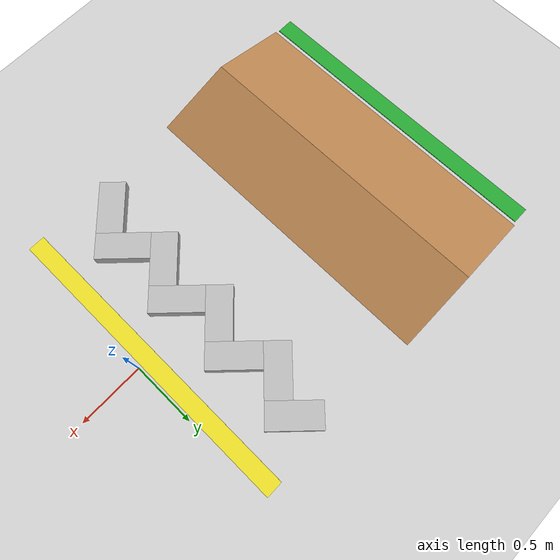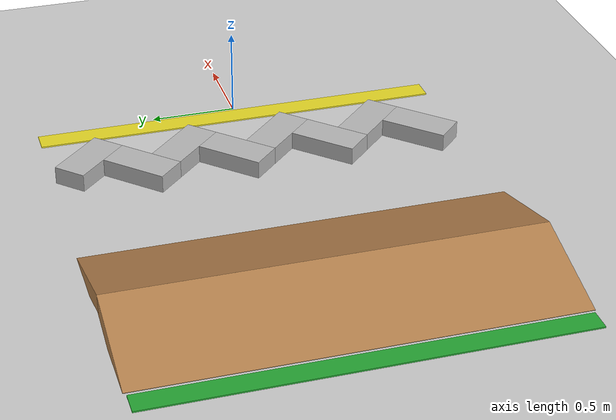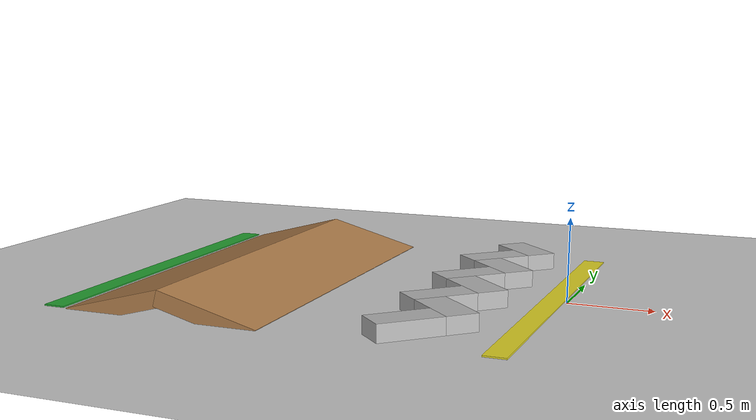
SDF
<sdf version="1.5">
 <world name="trials_task_2">
  <model name="ground_plane">
   <static>1</static>
   <link name="link">
    <collision name="collision">
     <geometry><plane><normal>0 0 1</normal><size>100 100</size></plane></geometry>
     <surface><friction><ode><mu>100</mu><mu2>50</mu2></ode></friction></surface>
    </collision>
    <visual name="visual">
     <cast_shadows>0</cast_shadows>
     <geometry><plane><normal>0 0 1</normal><size>100 100</size></plane></geometry>
     <material>
      <script><uri>file://media/materials/scripts/gazebo.material</uri><name>Gazebo/Grey</name></script>
     </material>
    </visual>
    <velocity_decay><linear>0</linear><angular>0</angular></velocity_decay>
   </link>
  </model>
  <model name="green_tape">
   <static>1</static>
   <pose>-2.7 0 0 0 -0 0</pose>
   <link name="link">
    <visual name="visual">
     <geometry><box><size>0.13 2.41 0.01</size></box></geometry>
     <material><script><name>Gazebo/Green</name><uri>__default__</uri></script></material>
    </visual>
    <velocity_decay><linear>0</linear><angular>0</angular></velocity_decay>
   </link>
  </model>
  <model name="ramp_0">
   <pose>-2 0 0 0 -0 0</pose>
   <static>1</static>
   <link name="link">
    <collision name="incline_collision">
     <pose>0.29175 0 0.0335 0 0.261799 0</pose>
     <geometry><box><size>0.631104 2.4384 0.1</size></box></geometry>
    </collision>
    <visual name="incline_visual">
     <pose>0.29175 0 0.0335 0 0.261799 0</pose>
     <geometry><box><size>0.631104 2.4384 0.1</size></box></geometry>
     <material><script><name>Gazebo/WoodFloor</name><uri>__default__</uri></script></material>
    </visual>
    <collision name="decline_collision">
     <pose>-0.29175 0 0.0335 0 -0.261799 0</pose>
     <geometry><box><size>0.631104 2.4384 0.1</size></box></geometry>
    </collision>
    <visual name="decline_visual">
     <pose>-0.29175 0 0.0335 0 -0.261799 0</pose>
     <geometry><box><size>0.631104 2.4384 0.1</size></box></geometry>
     <material><script><name>Gazebo/WoodFloor</name><uri>__default__</uri></script></material>
    </visual>
    <velocity_decay><linear>0</linear><angular>0</angular></velocity_decay>
   </link>
  </model>
  <model name="wall_2">
   <static>1</static>
   <pose>-4.7 -1.24739 0 0 -0 0</pose>
   <link name="block_0::link">
    <inertial>
     <pose>0 0 0.0714375 0 -0 0</pose>
     <mass>5</mass>
     <inertia>
      <ixx>0.06908</ixx>
      <ixy>0</ixy>
      <iyy>0.028705</iyy>
      <ixz>0</ixz>
      <iyz>0</iyz>
      <izz>0.073708</izz>
     </inertia>
    </inertial>
    <visual name="visual"><geometry><box><size>0.396875 0.19368 0.2</size></box></geometry></visual>
    <collision name="collision_box">
     <geometry><box><size>0.396875 0.19368 0.2</size></box></geometry>
     <surface>
      <contact><ode><max_vel>0.1</max_vel><min_depth>0.001</min_depth></ode></contact>
      <friction><ode><mu>1</mu><mu2>1</mu2></ode></friction>
     </surface>
    </collision>
    <velocity_decay><linear>0</linear><angular>0</angular></velocity_decay>
    <pose>4.05841 0.265175 0 0 -0 0.785398</pose>
   </link>
   <link name="block_3::link">
    <inertial>
     <pose>0 0 0.0714375 0 -0 0</pose>
     <mass>5</mass>
     <inertia>
      <ixx>0.06908</ixx>
      <ixy>0</ixy>
      <iyy>0.028705</iyy>
      <ixz>0</ixz>
      <iyz>0</iyz>
      <izz>0.073708</izz>
     </inertia>
    </inertial>
    <visual name="visual"><geometry><box><size>0.396875 0.19368 0.2</size></box></geometry></visual>
    <collision name="collision_box">
     <geometry><box><size>0.396875 0.19368 0.2</size></box></geometry>
     <surface>
      <contact><ode><max_vel>0.1</max_vel><min_depth>0.001</min_depth></ode></contact>
      <friction><ode><mu>1</mu><mu2>1</mu2></ode></friction>
     </surface>
    </collision>
    <velocity_decay><linear>0</linear><angular>0</angular></velocity_decay>
    <pose>4.19536 0.545809 0 0 0 -0.785398</pose>
   </link>
   <link name="block_5::link">
    <inertial>
     <pose>0 0 0.0714375 0 -0 0</pose>
     <mass>5</mass>
     <inertia>
      <ixx>0.06908</ixx>
      <ixy>0</ixy>
      <iyy>0.028705</iyy>
      <ixz>0</ixz>
      <iyz>0</iyz>
      <izz>0.073708</izz>
     </inertia>
    </inertial>
    <visual name="visual"><geometry><box><size>0.396875 0.19368 0.2</size></box></geometry></visual>
    <collision name="collision_box">
     <geometry><box><size>0.396875 0.19368 0.2</size></box></geometry>
     <surface>
      <contact><ode><max_vel>0.1</max_vel><min_depth>0.001</min_depth></ode></contact>
      <friction><ode><mu>1</mu><mu2>1</mu2></ode></friction>
     </surface>
    </collision>
    <velocity_decay><linear>0</linear><angular>0</angular></velocity_decay>
    <pose>4.05841 0.82644 0 0 -0 0.785398</pose>
   </link>
   <link name="block_7::link">
    <inertial>
     <pose>0 0 0.0714375 0 -0 0</pose>
     <mass>5</mass>
     <inertia>
      <ixx>0.06908</ixx>
      <ixy>0</ixy>
      <iyy>0.028705</iyy>
      <ixz>0</ixz>
      <iyz>0</iyz>
      <izz>0.073708</izz>
     </inertia>
    </inertial>
    <visual name="visual"><geometry><box><size>0.396875 0.19368 0.2</size></box></geometry></visual>
    <collision name="collision_box">
     <geometry><box><size>0.396875 0.19368 0.2</size></box></geometry>
     <surface>
      <contact><ode><max_vel>0.1</max_vel><min_depth>0.001</min_depth></ode></contact>
      <friction><ode><mu>1</mu><mu2>1</mu2></ode></friction>
     </surface>
    </collision>
    <velocity_decay><linear>0</linear><angular>0</angular></velocity_decay>
    <pose>4.19536 1.10707 0 0 0 -0.785398</pose>
   </link>
   <link name="block_9::link">
    <inertial>
     <pose>0 0 0.0714375 0 -0 0</pose>
     <mass>5</mass>
     <inertia>
      <ixx>0.06908</ixx>
      <ixy>0</ixy>
      <iyy>0.028705</iyy>
      <ixz>0</ixz>
      <iyz>0</iyz>
      <izz>0.073708</izz>
     </inertia>
    </inertial>
    <visual name="visual"><geometry><box><size>0.396875 0.19368 0.2</size></box></geometry></visual>
    <collision name="collision_box">
     <geometry><box><size>0.396875 0.19368 0.2</size></box></geometry>
     <surface>
      <contact><ode><max_vel>0.1</max_vel><min_depth>0.001</min_depth></ode></contact>
      <friction><ode><mu>1</mu><mu2>1</mu2></ode></friction>
     </surface>
    </collision>
    <velocity_decay><linear>0</linear><angular>0</angular></velocity_decay>
    <pose>4.05841 1.38771 0 0 -0 0.785398</pose>
   </link>
   <link name="block_11::link">
    <inertial>
     <pose>0 0 0.0714375 0 -0 0</pose>
     <mass>5</mass>
     <inertia>
      <ixx>0.06908</ixx>
      <ixy>0</ixy>
      <iyy>0.028705</iyy>
      <ixz>0</ixz>
      <iyz>0</iyz>
      <izz>0.073708</izz>
     </inertia>
    </inertial>
    <visual name="visual"><geometry><box><size>0.396875 0.19368 0.2</size></box></geometry></visual>
    <collision name="collision_box">
     <geometry><box><size>0.396875 0.19368 0.2</size></box></geometry>
     <surface>
      <contact><ode><max_vel>0.1</max_vel><min_depth>0.001</min_depth></ode></contact>
      <friction><ode><mu>1</mu><mu2>1</mu2></ode></friction>
     </surface>
    </collision>
    <velocity_decay><linear>0</linear><angular>0</angular></velocity_decay>
    <pose>4.19536 1.66834 0 0 0 -0.785398</pose>
   </link>
   <link name="block_13::link">
    <inertial>
     <pose>0 0 0.0714375 0 -0 0</pose>
     <mass>5</mass>
     <inertia>
      <ixx>0.06908</ixx>
      <ixy>0</ixy>
      <iyy>0.028705</iyy>
      <ixz>0</ixz>
      <iyz>0</iyz>
      <izz>0.073708</izz>
     </inertia>
    </inertial>
    <visual name="visual"><geometry><box><size>0.396875 0.19368 0.2</size></box></geometry></visual>
    <collision name="collision_box">
     <geometry><box><size>0.396875 0.19368 0.2</size></box></geometry>
     <surface>
      <contact><ode><max_vel>0.1</max_vel><min_depth>0.001</min_depth></ode></contact>
      <friction><ode><mu>1</mu><mu2>1</mu2></ode></friction>
     </surface>
    </collision>
    <velocity_decay><linear>0</linear><angular>0</angular></velocity_decay>
    <pose>4.05841 1.94897 0 0 -0 0.785398</pose>
   </link>
   <link name="block_15::link">
    <inertial>
     <pose>0 0 0.0714375 0 -0 0</pose>
     <mass>5</mass>
     <inertia>
      <ixx>0.06908</ixx>
      <ixy>0</ixy>
      <iyy>0.028705</iyy>
      <ixz>0</ixz>
      <iyz>0</iyz>
      <izz>0.073708</izz>
     </inertia>
    </inertial>
    <visual name="visual"><geometry><box><size>0.396875 0.19368 0.2</size></box></geometry></visual>
    <collision name="collision_box">
     <geometry><box><size>0.396875 0.19368 0.2</size></box></geometry>
     <surface>
      <contact><ode><max_vel>0.1</max_vel><min_depth>0.001</min_depth></ode></contact>
      <friction><ode><mu>1</mu><mu2>1</mu2></ode></friction>
     </surface>
    </collision>
    <velocity_decay><linear>0</linear><angular>0</angular></velocity_decay>
    <pose>4.19536 2.2296 0 0 0 -0.785398</pose>
   </link>
  </model>
  <model name="yellow_tape">
   <static>1</static>
   <pose>-0.087 0 0 0 -0 0</pose>
   <link name="link">
    <visual name="visual">
     <geometry><box><size>0.13 2.41 0.01</size></box></geometry>
     <material><script><name>Gazebo/Yellow</name><uri>__default__</uri></script></material>
    </visual>
    <velocity_decay><linear>0</linear><angular>0</angular></velocity_decay>
   </link>
  </model>
 </world>
</sdf>
